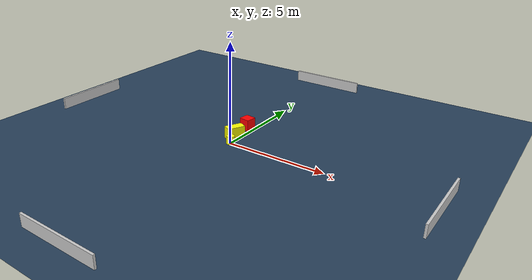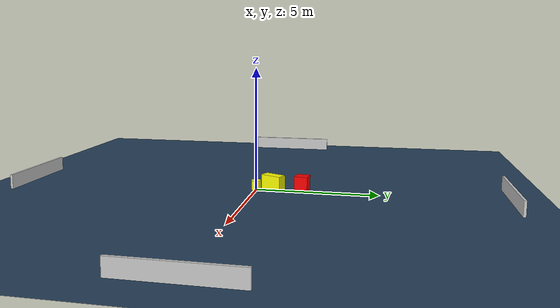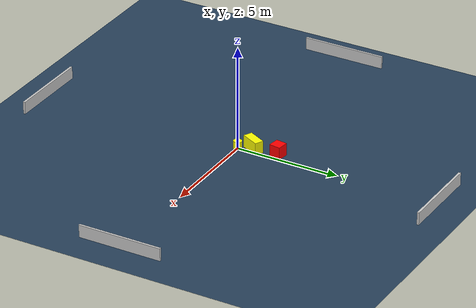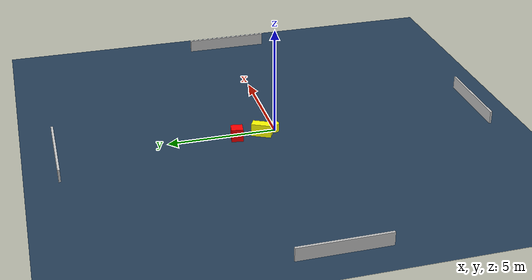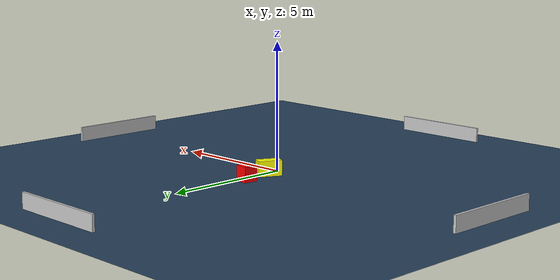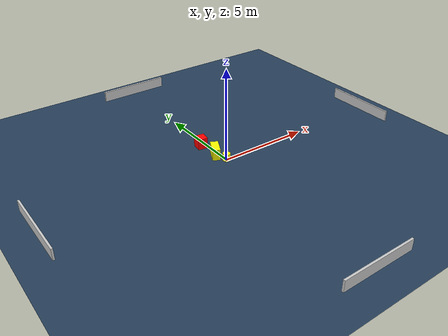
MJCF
<?xml version="1.0" ?>
<mujoco model="generated_environment">
  <option timestep="0.01" integrator="RK4" cone="elliptic"/>
  <default>
    <geom density="1"/>
  </default>
  <asset>
    <texture builtin="gradient" height="3072" name="skybox" rgb1="0.3 0.5 0.7" rgb2="0 0 0" type="skybox" width="512"/>
    <texture builtin="checker" height="300" name="groundplane" rgb1="0.2 0.3 0.4" rgb2="0.1 0.2 0.3" type="2d" width="300"/>
    <material name="groundplane" reflectance="0.2" texrepeat="5 5" texture="groundplane"/>
  </asset>
  <worldbody>
    <light dir="0 0 -1" directional="true" pos="0 0 1.5"/>
    <geom condim="3" friction="0.5 0.005 0.001" material="groundplane" name="floor" pos="0 0 0" size="0 0 0.05" type="plane"/>
    <body name="walls">
      <geom name="wall_1" condim="4" pos="-10.0 0.0 0.3" rgba="0.800000011920929 0.800000011920929 0.800000011920929 1.0" size="0.05 2.0 0.3" type="box"/>
      <geom name="wall_2" condim="4" pos="10.0 0.0 0.3" rgba="0.800000011920929 0.800000011920929 0.800000011920929 1.0" size="0.05 2.0 0.3" type="box"/>
      <geom name="wall_3" condim="4" pos="0.0 -10.0 0.3" rgba="0.800000011920929 0.800000011920929 0.800000011920929 1.0" size="2.0 0.05 0.3" type="box"/>
      <geom name="wall_4" condim="4" pos="0.0 10.0 0.3" rgba="0.800000011920929 0.800000011920929 0.800000011920929 1.0" size="2.0 0.05 0.3" type="box"/>
    </body>
    <body name="robot">
      <joint name="joint_x" type="slide" pos="0 0 0" axis="1 0 0"/>
      <joint name="joint_y" type="slide" pos="0 0 0" axis="0 1 0"/>
      <geom name="robot" type="cylinder" pos="0.0 0.0 0.2" size="0.2 0.2 0.0" mass="5.0" friction="1.0 0.005 0.0001" condim="4" rgba="1.0 1.0 0.0 1.0"/>
    </body>
    <body name="obstacle_1_movable">
      <geom name="obstacle_1_movable" condim="4" pos="-0.23324344063806685 0.6717426651378265 0.3" euler="0 0 152.98213040810552" friction="0.0 0.005 0.001" rgba="1.0 1.0 0.0 1.0" size="0.2106308455782061 0.4602773505526358 0.3" type="box" mass="0.1"/>
      <joint type="free"/>
    </body>
    <body name="obstacle_2_static">
      <geom name="obstacle_2_static" condim="4" pos="-0.31519334077881495 1.8784080778147931 0.3" euler="0 0 171.999757978327" friction="0.0 0.005 0.001" rgba="1.0 0.0 0.0 1.0" size="0.2707641683558656 0.270537599700436 0.3" type="box"/>
    </body>
  </worldbody>
  <actuator>
    <motor name="actuator_x" joint="joint_x" gear="1" ctrlrange="-1 1"/>
    <motor name="actuator_y" joint="joint_y" gear="1" ctrlrange="-1 1"/>
  </actuator>
</mujoco>
